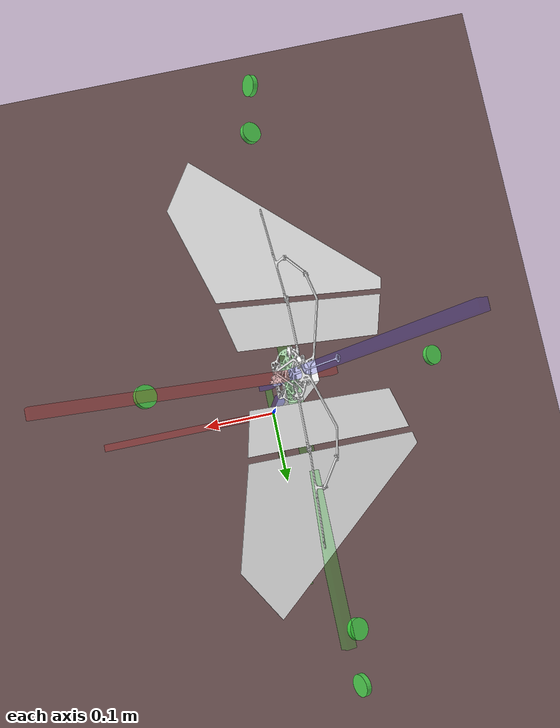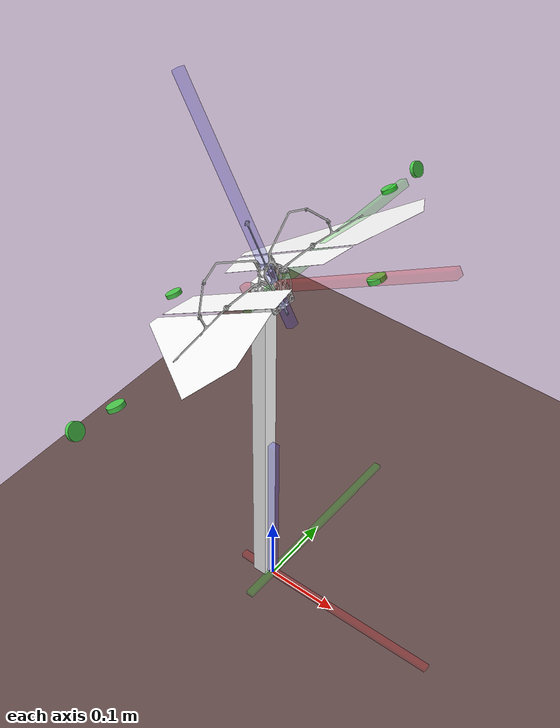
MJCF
<mujoco model="Flappy_v7">
  <compiler angle="radian" meshdir="meshes_v7/" balanceinertia="true" />
  <option impratio="1" gravity="0 0 -9.81"  integrator="implicit" density="1.225" viscosity="1.789e-5" wind="-165 0 0"> Uncomment this to enable aerodynamics
  </option>
  <visual>
    <global offwidth="3000" offheight="3000"/>
  </visual>
  <asset>
    <texture builtin="gradient" type="skybox" height="100" width="100" rgb1="1 1 1" rgb2=".6 .8 1"/>
    <texture name="texgeom" builtin="flat" height="1278" mark="cross" markrgb="1 1 1" random="0.01" rgb1="0.8 0.6 0.4" rgb2="0.8 0.6 0.4" type="cube" width="127"/>
    <texture name="texplane" builtin="checker" height="100" width="100" rgb1="0 0 0" rgb2="0.8 0.8 0.8" type="2d"/>
    <material name="MatPlane" reflectance="0.5" shininess="1" specular="1" texrepeat="60 60" texture="texplane"/>
    <mesh name="Base" file="Base_no_prop.STL"/>
    <mesh name="L1" file="L1.STL"/>
    <mesh name="L2" file="L2.STL"/>
    <mesh name="L1R" file="L1R.STL"/>
    <mesh name="L2R" file="L2R.STL"/>
    <mesh name="L3" file="L3.STL"/>
    <mesh name="L7" file="L7.STL"/>
    <mesh name="L6" file="L6.STL"/>
    <mesh name="L5" file="L5.STL"/>
    <mesh name="L4" file="L4.STL"/>
    <mesh name="L3R" file="L3R.STL"/>
    <mesh name="L7R" file="L7R.STL"/>
    <mesh name="L6R" file="L6R.STL"/>
    <mesh name="L5R" file="L5R.STL"/>
    <mesh name="L4R" file="L4R.STL"/>
    <mesh name="Proximal_L" file="Proximal_L.STL"/>
    <mesh name="Proximal_R" file="Proximal_R.STL"/>
    <mesh name="Distal_L" file="Distal_L.STL"/>
    <mesh name="Distal_R" file="Distal_R.STL"/>
  </asset>

  <default>
    <geom contype="0" conaffinity="0" condim="1" solref="0.001 1"/>
    <equality solref="1e-10 1"/>
    <default class="visual">
      <geom group="2" type="mesh" contype="0" conaffinity="0" rgba="1 1 1 1" density="0" />
    </default>
    <default class="collision">
      <geom contype="1" group="3" density="0" />
    </default>
    <default class="aerodynamics">
      <geom group="2" type="mesh" contype="0" conaffinity="0" rgba="1 1 1 1" density="0" fluidshape="ellipsoid"/>
    </default>
  </default>

  <worldbody>
    <light cutoff="100" diffuse="1 1 1" dir="-0 0 -1.3" directional="true" exponent="1" pos="0 0 1.3" specular=".1 .1 .1"/>
    <geom contype="1" conaffinity="1" condim="3" material="MatPlane" name="floor" pos="0 0 0" rgba="0.4 0.3 0.3 1" size="5 5 0.2" type="plane"/>
    <body name='Sensor Base' pos='-0.015 0 0'>
      <geom class="visual" type="box" size="0.01" fromto="0 0 0 0 0 0.5"/>
      <body name='Base' pos='0.015 0 0.5' quat="0.9659258 0 -0.258819 0"> Pitch up 30 degree Euler Y = -30deg
        <site name='sensor' pos="-0.015 0 0" quat="1 0 0 0"/>

        <site name="motor1" type="cylinder" pos="0.148 .0 .0" size=".01 0.0025" quat="1 0 0 0" rgba=".3 .8 .3 1"/> Front
        <site name="motor2" type="cylinder" pos="-0.175 .0 .0" size=".01 0.0025" quat="1 0 0 0" rgba=".3 .8 .3 1"/> Back
        <site name="motor3" type="cylinder" pos="-0.0135 -0.236 .0" size=".01 .0025" quat="1 0 0 0" rgba=".3 .8 .3 1"/> Right
        <site name="motor4" type="cylinder" pos="-0.0135 0.236 .0" size=".01 .0025" quat="1 0 0 0" rgba=".3 .8 .3 1"/> Left

        <site name="motor5" type="cylinder" pos="-0.02309409 -0.28340624 0.00202624" size=".01 .0025" quat="0.7071068 0 0.7071068 0" rgba=".3 .8 .3 1"/> Left
        <site name="motor6" type="cylinder" pos="-0.00397818 0.28319645 0.00210978" size=".01 .0025" quat="0.7071068 0 0.7071068 0" rgba=".3 .8 .3 1"/> Right

        <geom class="collision" mesh="Base"/>
        <geom class="visual" mesh="Base"/>
        <inertial pos="-0.01 0 0" quat="1 0 0 0" mass="0.045" diaginertia="2.608e-04 1.129e-03 1.106e-03"/> Without prop
        <body name="L1" pos="0 -0.01 -0.009798" quat="0.69604 0.124609 0.696041 0.124609">
        <inertial pos="0.0023972 6.0277e-09 0.0024639" quat="0 0.656907 0 0.753971" mass="0.00016152" diaginertia="2.05455e-09 1.8305e-09 5.80302e-10"/>
          <joint name="J1" type='hinge' pos="0 0 0" axis="0 0 -1" damping="0.1"/>
          <geom class="collision" mesh="L1"/>
          <geom class="visual" mesh="L1"/>
          <body name="L2" pos="0.0075 0 0.0042" quat="0.465143 0 0 0.885235">
            <inertial pos="0.0166046 0.000296703 0.0005" quat="0.0166331 0.706911 -0.0166331 0.706911" mass="0.000195528" diaginertia="2.88378e-08 2.85892e-08 2.81176e-10"/>
            <joint name="J2" type='hinge' pos="0 0 0" axis="0 0 1" damping="0.1"/>
            <geom class="collision" mesh="L2"/>
            <geom class="visual" mesh="L2"/>
            <body name="L4" pos="0.0040958 0.0028679 0.001" quat="0.962398 0 0 0.271643">
              <inertial pos="0.0195927 0.00283964 0.0005" quat="-0.0252401 0.706656 0.0252401 0.706656" mass="0.000187735" diaginertia="2.89369e-08 2.80109e-08 9.57333e-10"/>
              <joint name="J3" type='hinge' pos="0 0 0" axis="0 0 1" damping="0.1"/>
              <geom class="collision" mesh="L4"/>
              <geom class="visual" mesh="L4"/>
              <body name="L5" pos="0.036 0 0" quat="0.821933 0 0 -0.569584">
                <inertial pos="0.0388557 0.00585307 -0.0005" quat="-0.041434 0.705892 0.041434 0.705892" mass="0.000551493" diaginertia="4.88071e-07 4.68887e-07 1.92764e-08"/>
                <joint name="J7" type='hinge' pos="0 0 0" axis="0 0 1" damping="0.1"/>
                <geom class="collision" mesh="L5"/>
                <geom class="visual" mesh="L5"/>
                <body name="L6" pos="0.091031 0 0" quat="0.839002 0 0 -0.544128">
                <inertial pos="0.0183924 -0.000169189 0.0005" quat="0.00123631 0.707106 -0.00123631 0.707106" mass="0.00017604" diaginertia="2.69855e-08 2.68812e-08 1.3361e-10"/>
                  <joint name="J9" type='hinge' pos="0 0 0" axis="0 0 1" damping="0.1"/>
                  <geom class="collision" mesh="L6"/>
                  <geom class="visual" mesh="L6"/>
                </body>
              </body>
            </body>
          </body>
        </body>

        <body name="L3" pos="0.0052 0.020673 0.0075244" quat="0.437622 0.555415 0.437626 0.555415">
          <inertial pos="0.018735 -0.00021205 -0.0018849" quat="0.549574 0.550365 0.444842 0.444053" mass="0.00033968" diaginertia="1.60428e-07 1.2157e-07 4.10468e-08"/>
          <joint name="J5" type='hinge' pos="0 0 0" axis="0 0 1" damping="0.1"/>
          <geom class="collision" mesh="L3"/>
          <geom class="visual" mesh="L3"/>
          <geom class="aerodynamics" mesh="Proximal_L"/>
          <body name="L7" pos="0.081323 -0.018528 -0.001" quat="0.985802 0 0 -0.167911">
            <inertial pos="0.0056622 0.0013714 -0.0010401" quat="0.53849 0.466014 0.462135 0.528479" mass="0.00042645" diaginertia="3.70214e-07 2.95821e-07 8.98177e-08"/>
            <joint name="J6" type='hinge' pos="-0.035 0 0.001" axis="0 0 1" damping="0.1"/>
            <geom class="collision" mesh="L7"/>
            <geom class="visual" mesh="L7"/>
            <geom class="aerodynamics" mesh="Distal_L"/>
          </body>
        </body>

        <body name="L1R" pos="-0.0015 0.01 -0.009798" quat="0.111534 0.698255 -0.111539 -0.698255">
          <inertial pos="0.00010561 0 0.001" quat="0 0.707107 0 0.707107" mass="0.00044182" diaginertia="2.9266e-08 1.4957e-08 1.4604e-08"/>
          <joint name="J1R" pos="0 0 0" axis="0 0 -1" damping="0.1"/>
          <geom class="collision" mesh="L1R"/>
          <geom class="visual" mesh="L1R"/>
          <body name="L2R" pos="0.0075 0 0.002" quat="0.450965 0 0 0.892542">
            <inertial pos="0.016605 0.0002967 0.0002" quat="0.0166326 0.706911 -0.0166326 0.706911" mass="0.00019553" diaginertia="2.8838e-08 2.85896e-08 2.81174e-10"/>
            <joint name="J2R" pos="0 0 0" axis="0 0 1" damping="0.1"/>
            <geom class="collision" mesh="L2R"/>
            <geom class="visual" mesh="L2R"/>
            <body name="L4R" pos="0.0040958 0.0028679 0.0007" quat="0.962428 0 0 0.271537">
              <inertial pos="0.0195927 0.00283964 0.0005" quat="-0.0252401 0.706656 0.0252401 0.706656" mass="0.000187735" diaginertia="2.89369e-08 2.80109e-08 9.57333e-10"/>
              <joint name="J3R" pos="0 0 0" axis="0 0 1" damping="0.1"/>
              <geom class="collision" mesh="L4R"/>
              <geom class="visual" mesh="L4R"/>
              <body name="L5R" pos="0.036 0 0" quat="0.825674 0 0 -0.564147">
                <inertial pos="0.0388557 0.00585307 -0.0005" quat="-0.041434 0.705892 0.041434 0.705892" mass="0.000551493" diaginertia="4.88071e-07 4.68887e-07 1.92764e-08"/>
                <joint name="J7R" pos="0 0 0" axis="0 0 1" damping="0.1"/>
                <geom class="collision" mesh="L5R"/>
                <geom class="visual" mesh="L5R"/>
                <body name="L6R" pos="0.091031 0 0" quat="0.839491 0 0 -0.543373">
                  <inertial pos="0.0183924 -0.000169189 0.0005" quat="0.00123631 0.707106 -0.00123631 0.707106" mass="0.00017604" diaginertia="2.69855e-08 2.68812e-08 1.3361e-10"/>
                  <joint name="J9R" pos="0 0 0" axis="0 0 1" damping="0.1"/>
                  <geom class="collision" mesh="L6R"/>
                  <geom class="visual" mesh="L6R"/>
                </body>
              </body>
            </body>
          </body>
        </body>
        <body name="L3R" pos="-0.0042 -0.020673 0.0075244" quat="0.560984 0.430459 -0.560987 -0.430459">
          <inertial pos="0.018735 -0.00021205 0.0024048" quat="0.550365 0.549574 0.444053 0.444842" mass="0.00033968" diaginertia="1.60428e-07 1.2157e-07 4.10468e-08"/>
          <joint name="J5R" pos="0 0 0" axis="0 0 1" damping="0.1"/>
          <geom class="collision" mesh="L3R"/>
          <geom class="visual" mesh="L3R"/>
          <geom class="aerodynamics" mesh="Proximal_R"/>
          <body name="L7R" pos="0.0808429 -0.019814 -0.001" quat="0.98232 0 0 -0.187211">
            <inertial pos="0.0056622 0.0013714 0.0013865" quat="0.466014 0.53849 0.528479 0.462135" mass="0.00042645" diaginertia="3.70214e-07 2.95821e-07 8.98177e-08"/>
            <joint name="J6R" pos="-0.035 0 0.001" axis="0 0 1" damping="0.1"/>
            <geom class="collision" mesh="L7R"/>
            <geom class="visual" mesh="L7R"/>
            <geom class="aerodynamics" mesh="Distal_R"/>
          </body>
        </body>
        <site name="x_axis_b" type="box" pos=".1 .0 .0" size=".15 .005 .005" quat="1 0 0 0" rgba="1 0 0 0.2"/>
        <site name="y_axis_b" type="box" pos=".0 .1 .0" size=".15 .005 .005" quat=".707 0 0 .707" rgba="0 1 0 0.2"/>
        <site name="z_axis_b" type="box" pos=".0 .0 .1" size=".15 .005 .005" quat="-.707 0 .707 0" rgba="0 0 1 0.2"/>
      </body>
    </body>
    <site name="x_axis" type="box" pos=".1 .0 .0" size=".15 .005 .005" quat="1 0 0 0" rgba="1 0 0 0.2"/>
    <site name="y_axis" type="box" pos=".0 .1 .0" size=".15 .005 .005" quat=".707 0 0 .707" rgba="0 1 0 0.2"/>
    <site name="z_axis" type="box" pos=".0 .0 .1" size=".15 .005 .005" quat="-.707 0 .707 0" rgba="0 0 1 0.2"/>
  </worldbody>

  <sensor>
    <force name="CoM_Force" site='sensor'/>
    <torque name="CoM_Moment" site='sensor'/>  <!-- datasensor[13:16] -->
  </sensor>

  <equality>
    <connect name = 'J4-eq' body1='L2'  body2='L3' anchor='0.035 0 0.001'/>
    <connect name = 'J8-eq' body1='Base'  body2='L5' anchor='0.0042 0.00929760 0.01993877'/>
    <connect name = 'J10-eq' body1='L6'  body2='L7' anchor='0.036 0 0'/>
    <connect name = 'J4R-eq' body1='L2R'  body2='L3R' anchor='0.035 0 0.001'/>
    <connect name = 'J8R-eq' body1='Base'  body2='L5R' anchor='-0.0032 -0.00929760 0.01993877'/>
    <connect name = 'J10R-eq' body1='L6R'  body2='L7R' anchor='0.036 0 0'/>
    <joint name = 'LeftRight' joint1='J1'  joint2='J1R' polycoef="0 1 0 0 0"/>
    <joint name = 'J5-eq' joint1='J5'  joint2='J5R' polycoef="0 1 0 0 0"/>
    <joint name = 'J6-eq' joint1='J6'  joint2='J6R' polycoef="0 1 0 0 0"/>
  </equality>

  <actuator>
    <velocity name="velocity_servo" joint="J1" ctrllimited="true" ctrlrange="-30 0" kv="10"/> (This is correct now) The "data.ctrl[0]" need set to -29.8451302
    <motor ctrllimited="true" ctrlrange="0 1" gear="0  0. 0.35 0. 0. -0.0056" site="motor1"/> unit: N
    <motor ctrllimited="true" ctrlrange="0 1" gear="0  0. 0.35 0. 0. -0.0056" site="motor2"/>
    <motor ctrllimited="true" ctrlrange="0 1" gear="0  0. 0.35 0. 0. -0.0056" site="motor3"/>
    <motor ctrllimited="true" ctrlrange="0 1" gear="0  0. 0.35 0. 0. -0.0056" site="motor4"/>
    <motor ctrllimited="true" ctrlrange="0 1" gear="0  0. .1 0. 0.  0.0016" site="motor5"/>
    <motor ctrllimited="true" ctrlrange="0 1" gear="0  0. -.1 0. 0. -0.0016" site="motor6"/>
  </actuator>

</mujoco>
